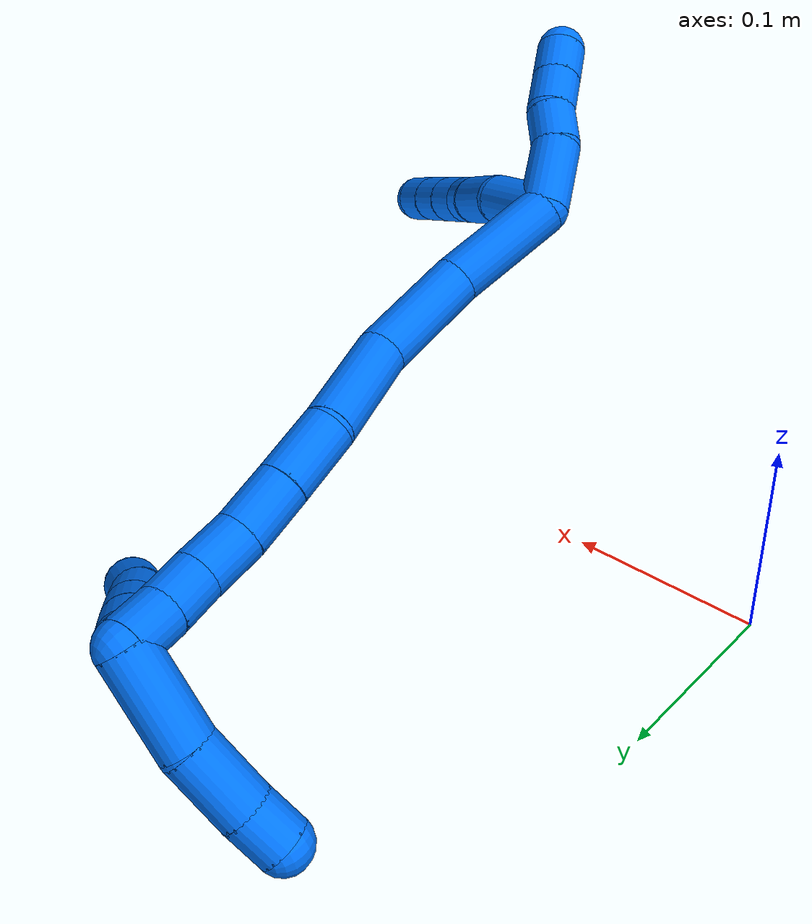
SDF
<sdf version="1.7">
 <world name="default">
  <model name="14">
   <static>0</static>
   <link name="14">
    <collision name="collision-cylinder-e_1_2_8">
     <pose>0.017828 -0.001822 -0.003008 2.597 1.37605 2.48667</pose>
     <geometry><cylinder><radius>0.0125</radius><length>0.036342</length></cylinder></geometry>
     <surface>
      <friction><ode><mu>1.16</mu><mu2>1.16</mu2><slip1>0</slip1><slip2>0</slip2></ode></friction>
      <contact><ode><kp>1e+06</kp><kd>1</kd><max_vel>0</max_vel><min_depth>0.001</min_depth></ode></contact>
     </surface>
    </collision>
    <visual name="visual-cylinder-e_1_2_8">
     <pose>0.017828 -0.001822 -0.003008 2.597 1.37605 2.48667</pose>
     <geometry><cylinder><radius>0.0125</radius><length>0.036342</length></cylinder></geometry>
     <material><ambient>0 0.462745 1 1</ambient></material>
    </visual>
    <collision name="collision-cylinder-e_2_8_9">
     <pose>0.050107 -0.001549 -0.010981 -2.7423 1.21386 -2.57449</pose>
     <geometry><cylinder><radius>0.0125</radius><length>0.030847</length></cylinder></geometry>
     <surface>
      <friction><ode><mu>1.16</mu><mu2>1.16</mu2><slip1>0</slip1><slip2>0</slip2></ode></friction>
      <contact><ode><kp>1e+06</kp><kd>1</kd><max_vel>0</max_vel><min_depth>0.001</min_depth></ode></contact>
     </surface>
    </collision>
    <visual name="visual-cylinder-e_2_8_9">
     <pose>0.050107 -0.001549 -0.010981 -2.7423 1.21386 -2.57449</pose>
     <geometry><cylinder><radius>0.0125</radius><length>0.030847</length></cylinder></geometry>
     <material><ambient>0 0.462745 1 1</ambient></material>
    </visual>
    <collision name="collision-cylinder-e_3_9_10">
     <pose>0.07376 0.002476 -0.021044 -2.77976 1.03597 -2.52044</pose>
     <geometry><cylinder><radius>0.0125</radius><length>0.02139</length></cylinder></geometry>
     <surface>
      <friction><ode><mu>1.16</mu><mu2>1.16</mu2><slip1>0</slip1><slip2>0</slip2></ode></friction>
      <contact><ode><kp>1e+06</kp><kd>1</kd><max_vel>0</max_vel><min_depth>0.001</min_depth></ode></contact>
     </surface>
    </collision>
    <visual name="visual-cylinder-e_3_9_10">
     <pose>0.07376 0.002476 -0.021044 -2.77976 1.03597 -2.52044</pose>
     <geometry><cylinder><radius>0.0125</radius><length>0.02139</length></cylinder></geometry>
     <material><ambient>0 0.462745 1 1</ambient></material>
    </visual>
    <collision name="collision-cylinder-e_4_10_11">
     <pose>0.092982 0.005145 -0.028545 -2.84313 1.32503 -2.76081</pose>
     <geometry><cylinder><radius>0.0125</radius><length>0.020662</length></cylinder></geometry>
     <surface>
      <friction><ode><mu>1.16</mu><mu2>1.16</mu2><slip1>0</slip1><slip2>0</slip2></ode></friction>
      <contact><ode><kp>1e+06</kp><kd>1</kd><max_vel>0</max_vel><min_depth>0.001</min_depth></ode></contact>
     </surface>
    </collision>
    <visual name="visual-cylinder-e_4_10_11">
     <pose>0.092982 0.005145 -0.028545 -2.84313 1.32503 -2.76081</pose>
     <geometry><cylinder><radius>0.0125</radius><length>0.020662</length></cylinder></geometry>
     <material><ambient>0 0.462745 1 1</ambient></material>
    </visual>
    <collision name="collision-cylinder-e_5_11_12">
     <pose>0.112846 0.006583 -0.033301 -2.85293 1.32629 -2.77368</pose>
     <geometry><cylinder><radius>0.0125</radius><length>0.02029</length></cylinder></geometry>
     <surface>
      <friction><ode><mu>1.16</mu><mu2>1.16</mu2><slip1>0</slip1><slip2>0</slip2></ode></friction>
      <contact><ode><kp>1e+06</kp><kd>1</kd><max_vel>0</max_vel><min_depth>0.001</min_depth></ode></contact>
     </surface>
    </collision>
    <visual name="visual-cylinder-e_5_11_12">
     <pose>0.112846 0.006583 -0.033301 -2.85293 1.32629 -2.77368</pose>
     <geometry><cylinder><radius>0.0125</radius><length>0.02029</length></cylinder></geometry>
     <material><ambient>0 0.462745 1 1</ambient></material>
    </visual>
    <collision name="collision-cylinder-e_6_12_6">
     <pose>0.132622 0.008075 -0.037991 -2.81428 1.32741 -2.7254</pose>
     <geometry><cylinder><radius>0.0125</radius><length>0.020468</length></cylinder></geometry>
     <surface>
      <friction><ode><mu>1.16</mu><mu2>1.16</mu2><slip1>0</slip1><slip2>0</slip2></ode></friction>
      <contact><ode><kp>1e+06</kp><kd>1</kd><max_vel>0</max_vel><min_depth>0.001</min_depth></ode></contact>
     </surface>
    </collision>
    <visual name="visual-cylinder-e_6_12_6">
     <pose>0.132622 0.008075 -0.037991 -2.81428 1.32741 -2.7254</pose>
     <geometry><cylinder><radius>0.0125</radius><length>0.020468</length></cylinder></geometry>
     <material><ambient>0 0.462745 1 1</ambient></material>
    </visual>
    <collision name="collision-cylinder-e_1_2_13">
     <pose>0.004183 -0.011314 -0.014306 2.47246 0.22546 0.629655</pose>
     <geometry><cylinder><radius>0.0125</radius><length>0.037425</length></cylinder></geometry>
     <surface>
      <friction><ode><mu>1.16</mu><mu2>1.16</mu2><slip1>0</slip1><slip2>0</slip2></ode></friction>
      <contact><ode><kp>1e+06</kp><kd>1</kd><max_vel>0</max_vel><min_depth>0.001</min_depth></ode></contact>
     </surface>
    </collision>
    <visual name="visual-cylinder-e_1_2_13">
     <pose>0.004183 -0.011314 -0.014306 2.47246 0.22546 0.629655</pose>
     <geometry><cylinder><radius>0.0125</radius><length>0.037425</length></cylinder></geometry>
     <material><ambient>0 0.462745 1 1</ambient></material>
    </visual>
    <collision name="collision-cylinder-e_2_13_14">
     <pose>0.012885 -0.029902 -0.034649 2.26349 0.445897 0.89953</pose>
     <geometry><cylinder><radius>0.0125</radius><length>0.020956</length></cylinder></geometry>
     <surface>
      <friction><ode><mu>1.16</mu><mu2>1.16</mu2><slip1>0</slip1><slip2>0</slip2></ode></friction>
      <contact><ode><kp>1e+06</kp><kd>1</kd><max_vel>0</max_vel><min_depth>0.001</min_depth></ode></contact>
     </surface>
    </collision>
    <visual name="visual-cylinder-e_2_13_14">
     <pose>0.012885 -0.029902 -0.034649 2.26349 0.445897 0.89953</pose>
     <geometry><cylinder><radius>0.0125</radius><length>0.020956</length></cylinder></geometry>
     <material><ambient>0 0.462745 1 1</ambient></material>
    </visual>
    <collision name="collision-cylinder-e_3_14_15">
     <pose>0.020732 -0.042985 -0.049063 2.53536 0.315569 0.941215</pose>
     <geometry><cylinder><radius>0.0125</radius><length>0.021445</length></cylinder></geometry>
     <surface>
      <friction><ode><mu>1.16</mu><mu2>1.16</mu2><slip1>0</slip1><slip2>0</slip2></ode></friction>
      <contact><ode><kp>1e+06</kp><kd>1</kd><max_vel>0</max_vel><min_depth>0.001</min_depth></ode></contact>
     </surface>
    </collision>
    <visual name="visual-cylinder-e_3_14_15">
     <pose>0.020732 -0.042985 -0.049063 2.53536 0.315569 0.941215</pose>
     <geometry><cylinder><radius>0.0125</radius><length>0.021445</length></cylinder></geometry>
     <material><ambient>0 0.462745 1 1</ambient></material>
    </visual>
    <collision name="collision-cylinder-e_4_15_5">
     <pose>0.027029 -0.054495 -0.065212 2.50859 0.29877 0.861522</pose>
     <geometry><cylinder><radius>0.0125</radius><length>0.020173</length></cylinder></geometry>
     <surface>
      <friction><ode><mu>1.16</mu><mu2>1.16</mu2><slip1>0</slip1><slip2>0</slip2></ode></friction>
      <contact><ode><kp>1e+06</kp><kd>1</kd><max_vel>0</max_vel><min_depth>0.001</min_depth></ode></contact>
     </surface>
    </collision>
    <visual name="visual-cylinder-e_4_15_5">
     <pose>0.027029 -0.054495 -0.065212 2.50859 0.29877 0.861522</pose>
     <geometry><cylinder><radius>0.0125</radius><length>0.020173</length></cylinder></geometry>
     <material><ambient>0 0.462745 1 1</ambient></material>
    </visual>
    <collision name="collision-cylinder-e_1_2_16">
     <pose>0.00719 0.006726 0.027628 -0.238792 0.24766 -0.029862</pose>
     <geometry><cylinder><radius>0.0125</radius><length>0.05866</length></cylinder></geometry>
     <surface>
      <friction><ode><mu>1.16</mu><mu2>1.16</mu2><slip1>0</slip1><slip2>0</slip2></ode></friction>
      <contact><ode><kp>1e+06</kp><kd>1</kd><max_vel>0</max_vel><min_depth>0.001</min_depth></ode></contact>
     </surface>
    </collision>
    <visual name="visual-cylinder-e_1_2_16">
     <pose>0.00719 0.006726 0.027628 -0.238792 0.24766 -0.029862</pose>
     <geometry><cylinder><radius>0.0125</radius><length>0.05866</length></cylinder></geometry>
     <material><ambient>0 0.462745 1 1</ambient></material>
    </visual>
    <collision name="collision-cylinder-e_2_16_17">
     <pose>0.015015 0.01935 0.082812 -0.210875 0.022551 -0.002387</pose>
     <geometry><cylinder><radius>0.0125</radius><length>0.056373</length></cylinder></geometry>
     <surface>
      <friction><ode><mu>1.16</mu><mu2>1.16</mu2><slip1>0</slip1><slip2>0</slip2></ode></friction>
      <contact><ode><kp>1e+06</kp><kd>1</kd><max_vel>0</max_vel><min_depth>0.001</min_depth></ode></contact>
     </surface>
    </collision>
    <visual name="visual-cylinder-e_2_16_17">
     <pose>0.015015 0.01935 0.082812 -0.210875 0.022551 -0.002387</pose>
     <geometry><cylinder><radius>0.0125</radius><length>0.056373</length></cylinder></geometry>
     <material><ambient>0 0.462745 1 1</ambient></material>
    </visual>
    <collision name="collision-cylinder-e_3_17_18">
     <pose>0.007712 0.030073 0.135577 -0.189111 -0.299964 0.028661</pose>
     <geometry><cylinder><radius>0.0125</radius><length>0.053734</length></cylinder></geometry>
     <surface>
      <friction><ode><mu>1.16</mu><mu2>1.16</mu2><slip1>0</slip1><slip2>0</slip2></ode></friction>
      <contact><ode><kp>1e+06</kp><kd>1</kd><max_vel>0</max_vel><min_depth>0.001</min_depth></ode></contact>
     </surface>
    </collision>
    <visual name="visual-cylinder-e_3_17_18">
     <pose>0.007712 0.030073 0.135577 -0.189111 -0.299964 0.028661</pose>
     <geometry><cylinder><radius>0.0125</radius><length>0.053734</length></cylinder></geometry>
     <material><ambient>0 0.462745 1 1</ambient></material>
    </visual>
    <collision name="collision-cylinder-e_4_18_19">
     <pose>-0.001429 0.039475 0.177073 -0.273933 -0.070926 0.00978</pose>
     <geometry><cylinder><radius>0.0125</radius><length>0.033919</length></cylinder></geometry>
     <surface>
      <friction><ode><mu>1.16</mu><mu2>1.16</mu2><slip1>0</slip1><slip2>0</slip2></ode></friction>
      <contact><ode><kp>1e+06</kp><kd>1</kd><max_vel>0</max_vel><min_depth>0.001</min_depth></ode></contact>
     </surface>
    </collision>
    <visual name="visual-cylinder-e_4_18_19">
     <pose>-0.001429 0.039475 0.177073 -0.273933 -0.070926 0.00978</pose>
     <geometry><cylinder><radius>0.0125</radius><length>0.033919</length></cylinder></geometry>
     <material><ambient>0 0.462745 1 1</ambient></material>
    </visual>
    <collision name="collision-cylinder-e_5_19_20">
     <pose>-0.003251 0.047976 0.207168 -0.276896 -0.043198 0.00602</pose>
     <geometry><cylinder><radius>0.0125</radius><length>0.028738</length></cylinder></geometry>
     <surface>
      <friction><ode><mu>1.16</mu><mu2>1.16</mu2><slip1>0</slip1><slip2>0</slip2></ode></friction>
      <contact><ode><kp>1e+06</kp><kd>1</kd><max_vel>0</max_vel><min_depth>0.001</min_depth></ode></contact>
     </surface>
    </collision>
    <visual name="visual-cylinder-e_5_19_20">
     <pose>-0.003251 0.047976 0.207168 -0.276896 -0.043198 0.00602</pose>
     <geometry><cylinder><radius>0.0125</radius><length>0.028738</length></cylinder></geometry>
     <material><ambient>0 0.462745 1 1</ambient></material>
    </visual>
    <collision name="collision-cylinder-e_6_20_21">
     <pose>-0.004667 0.053546 0.23346 -0.131057 -0.063101 0.004142</pose>
     <geometry><cylinder><radius>0.0125</radius><length>0.025231</length></cylinder></geometry>
     <surface>
      <friction><ode><mu>1.16</mu><mu2>1.16</mu2><slip1>0</slip1><slip2>0</slip2></ode></friction>
      <contact><ode><kp>1e+06</kp><kd>1</kd><max_vel>0</max_vel><min_depth>0.001</min_depth></ode></contact>
     </surface>
    </collision>
    <visual name="visual-cylinder-e_6_20_21">
     <pose>-0.004667 0.053546 0.23346 -0.131057 -0.063101 0.004142</pose>
     <geometry><cylinder><radius>0.0125</radius><length>0.025231</length></cylinder></geometry>
     <material><ambient>0 0.462745 1 1</ambient></material>
    </visual>
    <collision name="collision-cylinder-e_7_21_22">
     <pose>-0.008075 0.055893 0.256502 -0.066375 -0.241987 0.008073</pose>
     <geometry><cylinder><radius>0.0125</radius><length>0.021801</length></cylinder></geometry>
     <surface>
      <friction><ode><mu>1.16</mu><mu2>1.16</mu2><slip1>0</slip1><slip2>0</slip2></ode></friction>
      <contact><ode><kp>1e+06</kp><kd>1</kd><max_vel>0</max_vel><min_depth>0.001</min_depth></ode></contact>
     </surface>
    </collision>
    <visual name="visual-cylinder-e_7_21_22">
     <pose>-0.008075 0.055893 0.256502 -0.066375 -0.241987 0.008073</pose>
     <geometry><cylinder><radius>0.0125</radius><length>0.021801</length></cylinder></geometry>
     <material><ambient>0 0.462745 1 1</ambient></material>
    </visual>
    <collision name="collision-cylinder-e_8_22_1">
     <pose>-0.013191 0.056523 0.277537 0.006813 -0.2346 -0.000803</pose>
     <geometry><cylinder><radius>0.0125</radius><length>0.021542</length></cylinder></geometry>
     <surface>
      <friction><ode><mu>1.16</mu><mu2>1.16</mu2><slip1>0</slip1><slip2>0</slip2></ode></friction>
      <contact><ode><kp>1e+06</kp><kd>1</kd><max_vel>0</max_vel><min_depth>0.001</min_depth></ode></contact>
     </surface>
    </collision>
    <visual name="visual-cylinder-e_8_22_1">
     <pose>-0.013191 0.056523 0.277537 0.006813 -0.2346 -0.000803</pose>
     <geometry><cylinder><radius>0.0125</radius><length>0.021542</length></cylinder></geometry>
     <material><ambient>0 0.462745 1 1</ambient></material>
    </visual>
    <collision name="collision-cylinder-e_1_1_23">
     <pose>-0.024193 0.077803 0.28818 -1.563 -0.378787 0.375915</pose>
     <geometry><cylinder><radius>0.0125</radius><length>0.045961</length></cylinder></geometry>
     <surface>
      <friction><ode><mu>1.16</mu><mu2>1.16</mu2><slip1>0</slip1><slip2>0</slip2></ode></friction>
      <contact><ode><kp>1e+06</kp><kd>1</kd><max_vel>0</max_vel><min_depth>0.001</min_depth></ode></contact>
     </surface>
    </collision>
    <visual name="visual-cylinder-e_1_1_23">
     <pose>-0.024193 0.077803 0.28818 -1.563 -0.378787 0.375915</pose>
     <geometry><cylinder><radius>0.0125</radius><length>0.045961</length></cylinder></geometry>
     <material><ambient>0 0.462745 1 1</ambient></material>
    </visual>
    <collision name="collision-cylinder-e_2_23_24">
     <pose>-0.039186 0.114337 0.285459 -1.7587 -0.397831 0.477746</pose>
     <geometry><cylinder><radius>0.0125</radius><length>0.033529</length></cylinder></geometry>
     <surface>
      <friction><ode><mu>1.16</mu><mu2>1.16</mu2><slip1>0</slip1><slip2>0</slip2></ode></friction>
      <contact><ode><kp>1e+06</kp><kd>1</kd><max_vel>0</max_vel><min_depth>0.001</min_depth></ode></contact>
     </surface>
    </collision>
    <visual name="visual-cylinder-e_2_23_24">
     <pose>-0.039186 0.114337 0.285459 -1.7587 -0.397831 0.477746</pose>
     <geometry><cylinder><radius>0.0125</radius><length>0.033529</length></cylinder></geometry>
     <material><ambient>0 0.462745 1 1</ambient></material>
    </visual>
    <collision name="collision-cylinder-e_3_24_4">
     <pose>-0.050225 0.138426 0.28029 -1.82167 -0.45914 0.584983</pose>
     <geometry><cylinder><radius>0.0125</radius><length>0.02051</length></cylinder></geometry>
     <surface>
      <friction><ode><mu>1.16</mu><mu2>1.16</mu2><slip1>0</slip1><slip2>0</slip2></ode></friction>
      <contact><ode><kp>1e+06</kp><kd>1</kd><max_vel>0</max_vel><min_depth>0.001</min_depth></ode></contact>
     </surface>
    </collision>
    <visual name="visual-cylinder-e_3_24_4">
     <pose>-0.050225 0.138426 0.28029 -1.82167 -0.45914 0.584983</pose>
     <geometry><cylinder><radius>0.0125</radius><length>0.02051</length></cylinder></geometry>
     <material><ambient>0 0.462745 1 1</ambient></material>
    </visual>
    <collision name="collision-cylinder-e_1_1_25">
     <pose>-0.007142 0.060218 0.284453 -2.32814 1.02598 -1.83591</pose>
     <geometry><cylinder><radius>0.0125</radius><length>0.02</length></cylinder></geometry>
     <surface>
      <friction><ode><mu>1.16</mu><mu2>1.16</mu2><slip1>0</slip1><slip2>0</slip2></ode></friction>
      <contact><ode><kp>1e+06</kp><kd>1</kd><max_vel>0</max_vel><min_depth>0.001</min_depth></ode></contact>
     </surface>
    </collision>
    <visual name="visual-cylinder-e_1_1_25">
     <pose>-0.007142 0.060218 0.284453 -2.32814 1.02598 -1.83591</pose>
     <geometry><cylinder><radius>0.0125</radius><length>0.02</length></cylinder></geometry>
     <material><ambient>0 0.462745 1 1</ambient></material>
    </visual>
    <collision name="collision-cylinder-e_2_25_26">
     <pose>0.009847 0.065799 0.275841 -2.79664 1.00419 -2.5271</pose>
     <geometry><cylinder><radius>0.0125</radius><length>0.02</length></cylinder></geometry>
     <surface>
      <friction><ode><mu>1.16</mu><mu2>1.16</mu2><slip1>0</slip1><slip2>0</slip2></ode></friction>
      <contact><ode><kp>1e+06</kp><kd>1</kd><max_vel>0</max_vel><min_depth>0.001</min_depth></ode></contact>
     </surface>
    </collision>
    <visual name="visual-cylinder-e_2_25_26">
     <pose>0.009847 0.065799 0.275841 -2.79664 1.00419 -2.5271</pose>
     <geometry><cylinder><radius>0.0125</radius><length>0.02</length></cylinder></geometry>
     <material><ambient>0 0.462745 1 1</ambient></material>
    </visual>
    <collision name="collision-cylinder-e_3_26_27">
     <pose>0.026714 0.069922 0.265929 -2.6984 1.00268 -2.36153</pose>
     <geometry><cylinder><radius>0.0125</radius><length>0.02</length></cylinder></geometry>
     <surface>
      <friction><ode><mu>1.16</mu><mu2>1.16</mu2><slip1>0</slip1><slip2>0</slip2></ode></friction>
      <contact><ode><kp>1e+06</kp><kd>1</kd><max_vel>0</max_vel><min_depth>0.001</min_depth></ode></contact>
     </surface>
    </collision>
    <visual name="visual-cylinder-e_3_26_27">
     <pose>0.026714 0.069922 0.265929 -2.6984 1.00268 -2.36153</pose>
     <geometry><cylinder><radius>0.0125</radius><length>0.02</length></cylinder></geometry>
     <material><ambient>0 0.462745 1 1</ambient></material>
    </visual>
    <collision name="collision-cylinder-e_4_27_28">
     <pose>0.043401 0.074481 0.255899 -2.73066 0.971713 -2.38982</pose>
     <geometry><cylinder><radius>0.0125</radius><length>0.02</length></cylinder></geometry>
     <surface>
      <friction><ode><mu>1.16</mu><mu2>1.16</mu2><slip1>0</slip1><slip2>0</slip2></ode></friction>
      <contact><ode><kp>1e+06</kp><kd>1</kd><max_vel>0</max_vel><min_depth>0.001</min_depth></ode></contact>
     </surface>
    </collision>
    <visual name="visual-cylinder-e_4_27_28">
     <pose>0.043401 0.074481 0.255899 -2.73066 0.971713 -2.38982</pose>
     <geometry><cylinder><radius>0.0125</radius><length>0.02</length></cylinder></geometry>
     <material><ambient>0 0.462745 1 1</ambient></material>
    </visual>
    <collision name="collision-cylinder-e_5_28_3">
     <pose>0.061055 0.078517 0.247804 -2.59424 1.2211 -2.37855</pose>
     <geometry><cylinder><radius>0.0125</radius><length>0.02</length></cylinder></geometry>
     <surface>
      <friction><ode><mu>1.16</mu><mu2>1.16</mu2><slip1>0</slip1><slip2>0</slip2></ode></friction>
      <contact><ode><kp>1e+06</kp><kd>1</kd><max_vel>0</max_vel><min_depth>0.001</min_depth></ode></contact>
     </surface>
    </collision>
    <visual name="visual-cylinder-e_5_28_3">
     <pose>0.061055 0.078517 0.247804 -2.59424 1.2211 -2.37855</pose>
     <geometry><cylinder><radius>0.0125</radius><length>0.02</length></cylinder></geometry>
     <material><ambient>0 0.462745 1 1</ambient></material>
    </visual>
    <collision name="collision-sphere-3">
     <pose>0.070449 0.0803 0.244878 0 -0 0</pose>
     <geometry><sphere><radius>0.0125</radius></sphere></geometry>
     <surface>
      <friction><ode><mu>1.16</mu><mu2>1.16</mu2><slip1>0</slip1><slip2>0</slip2></ode></friction>
      <contact><ode><kp>1e+06</kp><kd>1</kd><max_vel>0</max_vel><min_depth>0.001</min_depth></ode></contact>
     </surface>
    </collision>
    <visual name="visual-sphere-3">
     <pose>0.070449 0.0803 0.244878 0 -0 0</pose>
     <geometry><sphere><radius>0.0125</radius></sphere></geometry>
     <material><ambient>0 0.462745 1 1</ambient></material>
    </visual>
    <collision name="collision-sphere-28">
     <pose>0.05166 0.076734 0.250729 0 -0 0</pose>
     <geometry><sphere><radius>0.0125</radius></sphere></geometry>
     <surface>
      <friction><ode><mu>1.16</mu><mu2>1.16</mu2><slip1>0</slip1><slip2>0</slip2></ode></friction>
      <contact><ode><kp>1e+06</kp><kd>1</kd><max_vel>0</max_vel><min_depth>0.001</min_depth></ode></contact>
     </surface>
    </collision>
    <visual name="visual-sphere-28">
     <pose>0.05166 0.076734 0.250729 0 -0 0</pose>
     <geometry><sphere><radius>0.0125</radius></sphere></geometry>
     <material><ambient>0 0.462745 1 1</ambient></material>
    </visual>
    <collision name="collision-sphere-27">
     <pose>0.035143 0.072229 0.261068 0 -0 0</pose>
     <geometry><sphere><radius>0.0125</radius></sphere></geometry>
     <surface>
      <friction><ode><mu>1.16</mu><mu2>1.16</mu2><slip1>0</slip1><slip2>0</slip2></ode></friction>
      <contact><ode><kp>1e+06</kp><kd>1</kd><max_vel>0</max_vel><min_depth>0.001</min_depth></ode></contact>
     </surface>
    </collision>
    <visual name="visual-sphere-27">
     <pose>0.035143 0.072229 0.261068 0 -0 0</pose>
     <geometry><sphere><radius>0.0125</radius></sphere></geometry>
     <material><ambient>0 0.462745 1 1</ambient></material>
    </visual>
    <collision name="collision-sphere-26">
     <pose>0.018284 0.067614 0.270789 0 -0 0</pose>
     <geometry><sphere><radius>0.0125</radius></sphere></geometry>
     <surface>
      <friction><ode><mu>1.16</mu><mu2>1.16</mu2><slip1>0</slip1><slip2>0</slip2></ode></friction>
      <contact><ode><kp>1e+06</kp><kd>1</kd><max_vel>0</max_vel><min_depth>0.001</min_depth></ode></contact>
     </surface>
    </collision>
    <visual name="visual-sphere-26">
     <pose>0.018284 0.067614 0.270789 0 -0 0</pose>
     <geometry><sphere><radius>0.0125</radius></sphere></geometry>
     <material><ambient>0 0.462745 1 1</ambient></material>
    </visual>
    <collision name="collision-sphere-25">
     <pose>0.00141 0.063984 0.280892 0 -0 0</pose>
     <geometry><sphere><radius>0.0125</radius></sphere></geometry>
     <surface>
      <friction><ode><mu>1.16</mu><mu2>1.16</mu2><slip1>0</slip1><slip2>0</slip2></ode></friction>
      <contact><ode><kp>1e+06</kp><kd>1</kd><max_vel>0</max_vel><min_depth>0.001</min_depth></ode></contact>
     </surface>
    </collision>
    <visual name="visual-sphere-25">
     <pose>0.00141 0.063984 0.280892 0 -0 0</pose>
     <geometry><sphere><radius>0.0125</radius></sphere></geometry>
     <material><ambient>0 0.462745 1 1</ambient></material>
    </visual>
    <collision name="collision-sphere-4">
     <pose>-0.05477 0.147331 0.278008 0 -0 0</pose>
     <geometry><sphere><radius>0.0125</radius></sphere></geometry>
     <surface>
      <friction><ode><mu>1.16</mu><mu2>1.16</mu2><slip1>0</slip1><slip2>0</slip2></ode></friction>
      <contact><ode><kp>1e+06</kp><kd>1</kd><max_vel>0</max_vel><min_depth>0.001</min_depth></ode></contact>
     </surface>
    </collision>
    <visual name="visual-sphere-4">
     <pose>-0.05477 0.147331 0.278008 0 -0 0</pose>
     <geometry><sphere><radius>0.0125</radius></sphere></geometry>
     <material><ambient>0 0.462745 1 1</ambient></material>
    </visual>
    <collision name="collision-sphere-24">
     <pose>-0.045681 0.129521 0.282572 0 -0 0</pose>
     <geometry><sphere><radius>0.0125</radius></sphere></geometry>
     <surface>
      <friction><ode><mu>1.16</mu><mu2>1.16</mu2><slip1>0</slip1><slip2>0</slip2></ode></friction>
      <contact><ode><kp>1e+06</kp><kd>1</kd><max_vel>0</max_vel><min_depth>0.001</min_depth></ode></contact>
     </surface>
    </collision>
    <visual name="visual-sphere-24">
     <pose>-0.045681 0.129521 0.282572 0 -0 0</pose>
     <geometry><sphere><radius>0.0125</radius></sphere></geometry>
     <material><ambient>0 0.462745 1 1</ambient></material>
    </visual>
    <collision name="collision-sphere-23">
     <pose>-0.032691 0.099154 0.288346 0 -0 0</pose>
     <geometry><sphere><radius>0.0125</radius></sphere></geometry>
     <surface>
      <friction><ode><mu>1.16</mu><mu2>1.16</mu2><slip1>0</slip1><slip2>0</slip2></ode></friction>
      <contact><ode><kp>1e+06</kp><kd>1</kd><max_vel>0</max_vel><min_depth>0.001</min_depth></ode></contact>
     </surface>
    </collision>
    <visual name="visual-sphere-23">
     <pose>-0.032691 0.099154 0.288346 0 -0 0</pose>
     <geometry><sphere><radius>0.0125</radius></sphere></geometry>
     <material><ambient>0 0.462745 1 1</ambient></material>
    </visual>
    <collision name="collision-sphere-1">
     <pose>-0.015695 0.056452 0.288013 0 -0 0</pose>
     <geometry><sphere><radius>0.0125</radius></sphere></geometry>
     <surface>
      <friction><ode><mu>1.16</mu><mu2>1.16</mu2><slip1>0</slip1><slip2>0</slip2></ode></friction>
      <contact><ode><kp>1e+06</kp><kd>1</kd><max_vel>0</max_vel><min_depth>0.001</min_depth></ode></contact>
     </surface>
    </collision>
    <visual name="visual-sphere-1">
     <pose>-0.015695 0.056452 0.288013 0 -0 0</pose>
     <geometry><sphere><radius>0.0125</radius></sphere></geometry>
     <material><ambient>0 0.462745 1 1</ambient></material>
    </visual>
    <collision name="collision-sphere-22">
     <pose>-0.010687 0.056595 0.267062 0 -0 0</pose>
     <geometry><sphere><radius>0.0125</radius></sphere></geometry>
     <surface>
      <friction><ode><mu>1.16</mu><mu2>1.16</mu2><slip1>0</slip1><slip2>0</slip2></ode></friction>
      <contact><ode><kp>1e+06</kp><kd>1</kd><max_vel>0</max_vel><min_depth>0.001</min_depth></ode></contact>
     </surface>
    </collision>
    <visual name="visual-sphere-22">
     <pose>-0.010687 0.056595 0.267062 0 -0 0</pose>
     <geometry><sphere><radius>0.0125</radius></sphere></geometry>
     <material><ambient>0 0.462745 1 1</ambient></material>
    </visual>
    <collision name="collision-sphere-21">
     <pose>-0.005463 0.055191 0.245942 0 -0 0</pose>
     <geometry><sphere><radius>0.0125</radius></sphere></geometry>
     <surface>
      <friction><ode><mu>1.16</mu><mu2>1.16</mu2><slip1>0</slip1><slip2>0</slip2></ode></friction>
      <contact><ode><kp>1e+06</kp><kd>1</kd><max_vel>0</max_vel><min_depth>0.001</min_depth></ode></contact>
     </surface>
    </collision>
    <visual name="visual-sphere-21">
     <pose>-0.005463 0.055191 0.245942 0 -0 0</pose>
     <geometry><sphere><radius>0.0125</radius></sphere></geometry>
     <material><ambient>0 0.462745 1 1</ambient></material>
    </visual>
    <collision name="collision-sphere-12">
     <pose>0.122689 0.007282 -0.035656 0 -0 0</pose>
     <geometry><sphere><radius>0.0125</radius></sphere></geometry>
     <surface>
      <friction><ode><mu>1.16</mu><mu2>1.16</mu2><slip1>0</slip1><slip2>0</slip2></ode></friction>
      <contact><ode><kp>1e+06</kp><kd>1</kd><max_vel>0</max_vel><min_depth>0.001</min_depth></ode></contact>
     </surface>
    </collision>
    <visual name="visual-sphere-12">
     <pose>0.122689 0.007282 -0.035656 0 -0 0</pose>
     <geometry><sphere><radius>0.0125</radius></sphere></geometry>
     <material><ambient>0 0.462745 1 1</ambient></material>
    </visual>
    <collision name="collision-sphere-11">
     <pose>0.103003 0.005884 -0.030947 0 -0 0</pose>
     <geometry><sphere><radius>0.0125</radius></sphere></geometry>
     <surface>
      <friction><ode><mu>1.16</mu><mu2>1.16</mu2><slip1>0</slip1><slip2>0</slip2></ode></friction>
      <contact><ode><kp>1e+06</kp><kd>1</kd><max_vel>0</max_vel><min_depth>0.001</min_depth></ode></contact>
     </surface>
    </collision>
    <visual name="visual-sphere-11">
     <pose>0.103003 0.005884 -0.030947 0 -0 0</pose>
     <geometry><sphere><radius>0.0125</radius></sphere></geometry>
     <material><ambient>0 0.462745 1 1</ambient></material>
    </visual>
    <collision name="collision-sphere-10">
     <pose>0.082961 0.004406 -0.026142 0 -0 0</pose>
     <geometry><sphere><radius>0.0125</radius></sphere></geometry>
     <surface>
      <friction><ode><mu>1.16</mu><mu2>1.16</mu2><slip1>0</slip1><slip2>0</slip2></ode></friction>
      <contact><ode><kp>1e+06</kp><kd>1</kd><max_vel>0</max_vel><min_depth>0.001</min_depth></ode></contact>
     </surface>
    </collision>
    <visual name="visual-sphere-10">
     <pose>0.082961 0.004406 -0.026142 0 -0 0</pose>
     <geometry><sphere><radius>0.0125</radius></sphere></geometry>
     <material><ambient>0 0.462745 1 1</ambient></material>
    </visual>
    <collision name="collision-sphere-9">
     <pose>0.064558 0.000547 -0.015946 0 -0 0</pose>
     <geometry><sphere><radius>0.0125</radius></sphere></geometry>
     <surface>
      <friction><ode><mu>1.16</mu><mu2>1.16</mu2><slip1>0</slip1><slip2>0</slip2></ode></friction>
      <contact><ode><kp>1e+06</kp><kd>1</kd><max_vel>0</max_vel><min_depth>0.001</min_depth></ode></contact>
     </surface>
    </collision>
    <visual name="visual-sphere-9">
     <pose>0.064558 0.000547 -0.015946 0 -0 0</pose>
     <geometry><sphere><radius>0.0125</radius></sphere></geometry>
     <material><ambient>0 0.462745 1 1</ambient></material>
    </visual>
    <collision name="collision-sphere-2">
     <geometry><sphere><radius>0.0125</radius></sphere></geometry>
     <surface>
      <friction><ode><mu>1.16</mu><mu2>1.16</mu2><slip1>0</slip1><slip2>0</slip2></ode></friction>
      <contact><ode><kp>1e+06</kp><kd>1</kd><max_vel>0</max_vel><min_depth>0.001</min_depth></ode></contact>
     </surface>
    </collision>
    <visual name="visual-sphere-2">
     <geometry><sphere><radius>0.0125</radius></sphere></geometry>
     <material><ambient>0 0.462745 1 1</ambient></material>
    </visual>
    <collision name="collision-sphere-19">
     <pose>-0.002631 0.044051 0.19336 0 -0 0</pose>
     <geometry><sphere><radius>0.0125</radius></sphere></geometry>
     <surface>
      <friction><ode><mu>1.16</mu><mu2>1.16</mu2><slip1>0</slip1><slip2>0</slip2></ode></friction>
      <contact><ode><kp>1e+06</kp><kd>1</kd><max_vel>0</max_vel><min_depth>0.001</min_depth></ode></contact>
     </surface>
    </collision>
    <visual name="visual-sphere-19">
     <pose>-0.002631 0.044051 0.19336 0 -0 0</pose>
     <geometry><sphere><radius>0.0125</radius></sphere></geometry>
     <material><ambient>0 0.462745 1 1</ambient></material>
    </visual>
    <collision name="collision-sphere-8">
     <pose>0.035655 -0.003644 -0.006016 0 -0 0</pose>
     <geometry><sphere><radius>0.0125</radius></sphere></geometry>
     <surface>
      <friction><ode><mu>1.16</mu><mu2>1.16</mu2><slip1>0</slip1><slip2>0</slip2></ode></friction>
      <contact><ode><kp>1e+06</kp><kd>1</kd><max_vel>0</max_vel><min_depth>0.001</min_depth></ode></contact>
     </surface>
    </collision>
    <visual name="visual-sphere-8">
     <pose>0.035655 -0.003644 -0.006016 0 -0 0</pose>
     <geometry><sphere><radius>0.0125</radius></sphere></geometry>
     <material><ambient>0 0.462745 1 1</ambient></material>
    </visual>
    <collision name="collision-sphere-6">
     <pose>0.142554 0.008868 -0.040326 0 -0 0</pose>
     <geometry><sphere><radius>0.0125</radius></sphere></geometry>
     <surface>
      <friction><ode><mu>1.16</mu><mu2>1.16</mu2><slip1>0</slip1><slip2>0</slip2></ode></friction>
      <contact><ode><kp>1e+06</kp><kd>1</kd><max_vel>0</max_vel><min_depth>0.001</min_depth></ode></contact>
     </surface>
    </collision>
    <visual name="visual-sphere-6">
     <pose>0.142554 0.008868 -0.040326 0 -0 0</pose>
     <geometry><sphere><radius>0.0125</radius></sphere></geometry>
     <material><ambient>0 0.462745 1 1</ambient></material>
    </visual>
    <collision name="collision-sphere-13">
     <pose>0.008367 -0.022628 -0.028612 0 -0 0</pose>
     <geometry><sphere><radius>0.0125</radius></sphere></geometry>
     <surface>
      <friction><ode><mu>1.16</mu><mu2>1.16</mu2><slip1>0</slip1><slip2>0</slip2></ode></friction>
      <contact><ode><kp>1e+06</kp><kd>1</kd><max_vel>0</max_vel><min_depth>0.001</min_depth></ode></contact>
     </surface>
    </collision>
    <visual name="visual-sphere-13">
     <pose>0.008367 -0.022628 -0.028612 0 -0 0</pose>
     <geometry><sphere><radius>0.0125</radius></sphere></geometry>
     <material><ambient>0 0.462745 1 1</ambient></material>
    </visual>
    <collision name="collision-sphere-14">
     <pose>0.017404 -0.037177 -0.040686 0 -0 0</pose>
     <geometry><sphere><radius>0.0125</radius></sphere></geometry>
     <surface>
      <friction><ode><mu>1.16</mu><mu2>1.16</mu2><slip1>0</slip1><slip2>0</slip2></ode></friction>
      <contact><ode><kp>1e+06</kp><kd>1</kd><max_vel>0</max_vel><min_depth>0.001</min_depth></ode></contact>
     </surface>
    </collision>
    <visual name="visual-sphere-14">
     <pose>0.017404 -0.037177 -0.040686 0 -0 0</pose>
     <geometry><sphere><radius>0.0125</radius></sphere></geometry>
     <material><ambient>0 0.462745 1 1</ambient></material>
    </visual>
    <collision name="collision-sphere-15">
     <pose>0.02406 -0.048793 -0.05744 0 -0 0</pose>
     <geometry><sphere><radius>0.0125</radius></sphere></geometry>
     <surface>
      <friction><ode><mu>1.16</mu><mu2>1.16</mu2><slip1>0</slip1><slip2>0</slip2></ode></friction>
      <contact><ode><kp>1e+06</kp><kd>1</kd><max_vel>0</max_vel><min_depth>0.001</min_depth></ode></contact>
     </surface>
    </collision>
    <visual name="visual-sphere-15">
     <pose>0.02406 -0.048793 -0.05744 0 -0 0</pose>
     <geometry><sphere><radius>0.0125</radius></sphere></geometry>
     <material><ambient>0 0.462745 1 1</ambient></material>
    </visual>
    <collision name="collision-sphere-5">
     <pose>0.029998 -0.060198 -0.072984 0 -0 0</pose>
     <geometry><sphere><radius>0.0125</radius></sphere></geometry>
     <surface>
      <friction><ode><mu>1.16</mu><mu2>1.16</mu2><slip1>0</slip1><slip2>0</slip2></ode></friction>
      <contact><ode><kp>1e+06</kp><kd>1</kd><max_vel>0</max_vel><min_depth>0.001</min_depth></ode></contact>
     </surface>
    </collision>
    <visual name="visual-sphere-5">
     <pose>0.029998 -0.060198 -0.072984 0 -0 0</pose>
     <geometry><sphere><radius>0.0125</radius></sphere></geometry>
     <material><ambient>0 0.462745 1 1</ambient></material>
    </visual>
    <collision name="collision-sphere-16">
     <pose>0.01438 0.013452 0.055257 0 -0 0</pose>
     <geometry><sphere><radius>0.0125</radius></sphere></geometry>
     <surface>
      <friction><ode><mu>1.16</mu><mu2>1.16</mu2><slip1>0</slip1><slip2>0</slip2></ode></friction>
      <contact><ode><kp>1e+06</kp><kd>1</kd><max_vel>0</max_vel><min_depth>0.001</min_depth></ode></contact>
     </surface>
    </collision>
    <visual name="visual-sphere-16">
     <pose>0.01438 0.013452 0.055257 0 -0 0</pose>
     <geometry><sphere><radius>0.0125</radius></sphere></geometry>
     <material><ambient>0 0.462745 1 1</ambient></material>
    </visual>
    <collision name="collision-sphere-17">
     <pose>0.015651 0.025248 0.110367 0 -0 0</pose>
     <geometry><sphere><radius>0.0125</radius></sphere></geometry>
     <surface>
      <friction><ode><mu>1.16</mu><mu2>1.16</mu2><slip1>0</slip1><slip2>0</slip2></ode></friction>
      <contact><ode><kp>1e+06</kp><kd>1</kd><max_vel>0</max_vel><min_depth>0.001</min_depth></ode></contact>
     </surface>
    </collision>
    <visual name="visual-sphere-17">
     <pose>0.015651 0.025248 0.110367 0 -0 0</pose>
     <geometry><sphere><radius>0.0125</radius></sphere></geometry>
     <material><ambient>0 0.462745 1 1</ambient></material>
    </visual>
    <collision name="collision-sphere-18">
     <pose>-0.000227 0.034899 0.160787 0 -0 0</pose>
     <geometry><sphere><radius>0.0125</radius></sphere></geometry>
     <surface>
      <friction><ode><mu>1.16</mu><mu2>1.16</mu2><slip1>0</slip1><slip2>0</slip2></ode></friction>
      <contact><ode><kp>1e+06</kp><kd>1</kd><max_vel>0</max_vel><min_depth>0.001</min_depth></ode></contact>
     </surface>
    </collision>
    <visual name="visual-sphere-18">
     <pose>-0.000227 0.034899 0.160787 0 -0 0</pose>
     <geometry><sphere><radius>0.0125</radius></sphere></geometry>
     <material><ambient>0 0.462745 1 1</ambient></material>
    </visual>
    <collision name="collision-sphere-20">
     <pose>-0.003872 0.0519 0.220977 0 -0 0</pose>
     <geometry><sphere><radius>0.0125</radius></sphere></geometry>
     <surface>
      <friction><ode><mu>1.16</mu><mu2>1.16</mu2><slip1>0</slip1><slip2>0</slip2></ode></friction>
      <contact><ode><kp>1e+06</kp><kd>1</kd><max_vel>0</max_vel><min_depth>0.001</min_depth></ode></contact>
     </surface>
    </collision>
    <visual name="visual-sphere-20">
     <pose>-0.003872 0.0519 0.220977 0 -0 0</pose>
     <geometry><sphere><radius>0.0125</radius></sphere></geometry>
     <material><ambient>0 0.462745 1 1</ambient></material>
    </visual>
    <inertial>
     <pose>0.016397 0.032142 0.122118 0 -0 0</pose>
     <mass>0.75</mass>
     <inertia><ixx>0.000103</ixx><ixy>0</ixy><ixz>0</ixz><iyy>0.0001</iyy><iyz>0</iyz><izz>-3.1e-05</izz></inertia>
    </inertial>
   </link>
   <pose>0.14993 -0.019651 0.170706 -1.70332 0.29254 -0.090713</pose>
  </model>
 </world>
</sdf>
